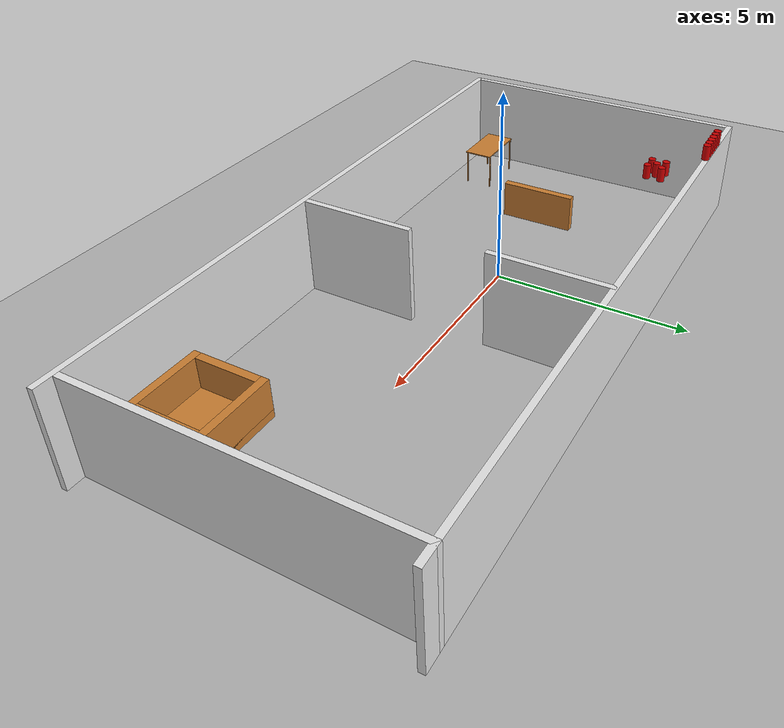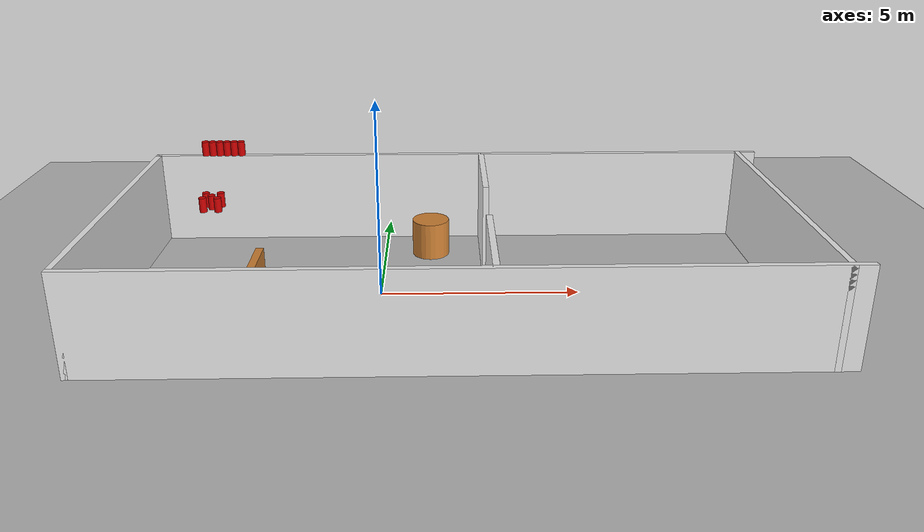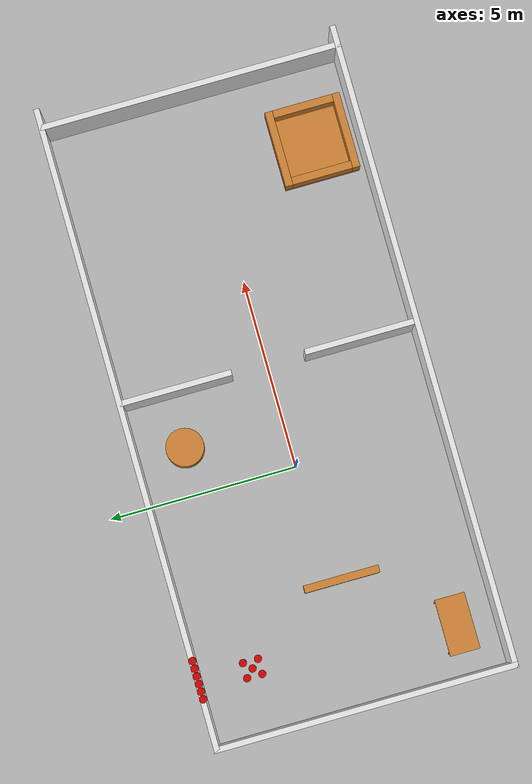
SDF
<?xml version="1.0" ?>
<sdf version='1.7'>
  <world name='trash_world'>

    <!-- ── Physics ─────────────────────────────────────────────────────── -->
    <physics name="1ms" type="ignored">
      <max_step_size>0.001</max_step_size>
      <real_time_factor>1.0</real_time_factor>
    </physics>

    <!-- ── Required plugins ─────────────────────────────────────────────── -->
    <plugin filename="ignition-gazebo-physics-system"
            name="gz::sim::systems::Physics"/>
    <plugin filename="ignition-gazebo-user-commands-system"
            name="gz::sim::systems::UserCommands"/>
    <plugin filename="ignition-gazebo-scene-broadcaster-system"
            name="gz::sim::systems::SceneBroadcaster"/>
    <plugin filename="ignition-gazebo-contact-system"
            name="gz::sim::systems::Contact"/>
    <!-- Sensors system required for gpu_lidar -->
    <plugin filename="ignition-gazebo-sensors-system"
            name="gz::sim::systems::Sensors">
      <render_engine>ogre2</render_engine>
    </plugin>

    <!-- ── Lighting ──────────────────────────────────────────────────────── -->
    <light type="directional" name="sun">
      <cast_shadows>true</cast_shadows>
      <pose>0 0 10 0 0 0</pose>
      <diffuse>0.8 0.8 0.8 1</diffuse>
      <specular>0.2 0.2 0.2 1</specular>
      <attenuation>
        <range>1000</range>
        <constant>0.9</constant>
        <linear>0.01</linear>
        <quadratic>0.001</quadratic>
      </attenuation>
      <direction>-0.5 0.1 -0.9</direction>
    </light>

    <!-- ── Ground plane ──────────────────────────────────────────────────── -->
    <model name="ground_plane">
      <static>true</static>
      <link name="link">
        <collision name="collision">
          <geometry>
            <plane><normal>0 0 1</normal><size>100 100</size></plane>
          </geometry>
        </collision>
        <visual name="visual">
          <geometry>
            <plane><normal>0 0 1</normal><size>100 100</size></plane>
          </geometry>
          <material>
            <ambient>0.7 0.7 0.7 1</ambient>
            <diffuse>0.7 0.7 0.7 1</diffuse>
          </material>
        </visual>
      </link>
    </model>

    <model name='office'>
      <pose>0 0 0 0 -0 0</pose>
      <link name='Wall_33'>
        <collision name='Wall_33_Collision'>
          <geometry>
            <box>
              <size>17 0.15 2.5</size>
            </box>
          </geometry>
          <pose>0 0 1.25 0 -0 0</pose>
          <max_contacts>10</max_contacts>
          <surface>
            <contact>
              <ode/>
            </contact>
            <bounce/>
            <friction>
              <torsional>
                <ode/>
              </torsional>
              <ode/>
            </friction>
          </surface>
        </collision>
        <visual name='Wall_33_Visual'>
          <pose>0 0 1.25 0 -0 0</pose>
          <geometry>
            <box>
              <size>17 0.15 2.5</size>
            </box>
          </geometry>
          <material><ambient>0.9 0.9 0.9 1</ambient><diffuse>0.9 0.9 0.9 1</diffuse></material>
          <meta>
            <layer>0</layer>
          </meta>
        </visual>
        <pose>2 -3.925 0 0 -0 0</pose>
        <self_collide>0</self_collide>
        <enable_wind>0</enable_wind>
        <kinematic>0</kinematic>
      </link>
      <link name='Wall_35'>
        <collision name='Wall_35_Collision'>
          <geometry>
            <box>
              <size>8 0.15 2.5</size>
            </box>
          </geometry>
          <pose>0 0 1.25 0 -0 0</pose>
          <max_contacts>10</max_contacts>
          <surface>
            <contact>
              <ode/>
            </contact>
            <bounce/>
            <friction>
              <torsional>
                <ode/>
              </torsional>
              <ode/>
            </friction>
          </surface>
        </collision>
        <visual name='Wall_35_Visual'>
          <pose>0 0 1.25 0 -0 0</pose>
          <geometry>
            <box>
              <size>8 0.15 2.5</size>
            </box>
          </geometry>
          <material><ambient>0.9 0.9 0.9 1</ambient><diffuse>0.9 0.9 0.9 1</diffuse></material>
          <meta>
            <layer>0</layer>
          </meta>
        </visual>
        <pose>10 0 0 0 -0 1.5708</pose>
        <self_collide>0</self_collide>
        <enable_wind>0</enable_wind>
        <kinematic>0</kinematic>
      </link>
      <link name='Wall_36'>
        <collision name='Wall_36_Collision'>
          <geometry>
            <box>
              <size>17 0.15 2.5</size>
            </box>
          </geometry>
          <pose>0 0 1.25 0 -0 0</pose>
          <max_contacts>10</max_contacts>
          <surface>
            <contact>
              <ode/>
            </contact>
            <bounce/>
            <friction>
              <torsional>
                <ode/>
              </torsional>
              <ode/>
            </friction>
          </surface>
        </collision>
        <visual name='Wall_36_Visual'>
          <pose>0 0 1.25 0 -0 0</pose>
          <geometry>
            <box>
              <size>17 0.15 2.5</size>
            </box>
          </geometry>
          <material><ambient>0.9 0.9 0.9 1</ambient><diffuse>0.9 0.9 0.9 1</diffuse></material>
          <meta>
            <layer>0</layer>
          </meta>
        </visual>
        <pose>2 3.925 0 0 -0 3.14159</pose>
        <self_collide>0</self_collide>
        <enable_wind>0</enable_wind>
        <kinematic>0</kinematic>
      </link>
      <link name='Wall_37'>
        <collision name='Wall_37_Collision'>
          <geometry>
            <box>
              <size>8 0.15 2.5</size>
            </box>
          </geometry>
          <pose>0 0 1.25 0 -0 0</pose>
          <max_contacts>10</max_contacts>
          <surface>
            <contact>
              <ode/>
            </contact>
            <bounce/>
            <friction>
              <torsional>
                <ode/>
              </torsional>
              <ode/>
            </friction>
          </surface>
        </collision>
        <visual name='Wall_37_Visual'>
          <pose>0 0 1.25 0 -0 0</pose>
          <geometry>
            <box>
              <size>8 0.15 2.5</size>
            </box>
          </geometry>
          <material><ambient>0.9 0.9 0.9 1</ambient><diffuse>0.9 0.9 0.9 1</diffuse></material>
          <meta>
            <layer>0</layer>
          </meta>
        </visual>
        <pose>-6.425 0 0 0 -0 -1.5708</pose>
        <self_collide>0</self_collide>
        <enable_wind>0</enable_wind>
        <kinematic>0</kinematic>
      </link>
      <link name='Wall_39'>
        <collision name='Wall_39_Collision'>
          <geometry>
            <box>
              <size>3 0.15 2.5</size>
            </box>
          </geometry>
          <pose>0 0 1.25 0 -0 0</pose>
          <max_contacts>10</max_contacts>
          <surface>
            <contact>
              <ode/>
            </contact>
            <bounce/>
            <friction>
              <torsional>
                <ode/>
              </torsional>
              <ode/>
            </friction>
          </surface>
        </collision>
        <visual name='Wall_39_Visual'>
          <pose>0 0 1.25 0 -0 0</pose>
          <geometry>
            <box>
              <size>3 0.15 2.5</size>
            </box>
          </geometry>
          <material><ambient>0.9 0.9 0.9 1</ambient><diffuse>0.9 0.9 0.9 1</diffuse></material>
          <meta>
            <layer>0</layer>
          </meta>
        </visual>
        <pose>2.6695 2.4638 0 0 -0 -1.5708</pose>
        <self_collide>0</self_collide>
        <enable_wind>0</enable_wind>
        <kinematic>0</kinematic>
      </link>
      <link name='Wall_41'>
        <collision name='Wall_41_Collision'>
          <geometry>
            <box>
              <size>3 0.15 2.5</size>
            </box>
          </geometry>
          <pose>0 0 1.25 0 -0 0</pose>
          <max_contacts>10</max_contacts>
          <surface>
            <contact>
              <ode/>
            </contact>
            <bounce/>
            <friction>
              <torsional>
                <ode/>
              </torsional>
              <ode/>
            </friction>
          </surface>
        </collision>
        <visual name='Wall_41_Visual'>
          <pose>0 0 1.25 0 -0 0</pose>
          <geometry>
            <box>
              <size>3 0.15 2.5</size>
            </box>
          </geometry>
          <material><ambient>0.9 0.9 0.9 1</ambient><diffuse>0.9 0.9 0.9 1</diffuse></material>
          <meta>
            <layer>0</layer>
          </meta>
        </visual>
        <pose>2.65657 -2.46875 0 0 -0 1.5708</pose>
        <self_collide>0</self_collide>
        <enable_wind>0</enable_wind>
        <kinematic>0</kinematic>
      </link>
      <static>1</static>
    </model>

    <!-- ══════════════════════════════════════════════════════════════════
         Goal Object
         ══════════════════════════════════════════════════════════════════ -->

    <model name='Box'>
      <static>true</static>
      <pose>8.0 -2.7 0.4 0 -0 0</pose>
      <link name='link_4'>
        <pose>0 0 -0.28 0 -0 0</pose>
        <gravity>1</gravity>
        <self_collide>1</self_collide>
        <kinematic>1</kinematic>
        <enable_wind>0</enable_wind>
        <visual name='visual'>
          <pose>0 0 0 0 -0 0</pose>
          <geometry>
            <box>
              <size>2 2 0.2</size>
            </box>
          </geometry>
          <material><ambient>0.8 0.5 0.2 1</ambient><diffuse>0.8 0.5 0.2 1</diffuse></material>
          <transparency>0</transparency>
          <cast_shadows>1</cast_shadows>
        </visual>
        <collision name='collision'>
          <laser_retro>0</laser_retro>
          <max_contacts>10</max_contacts>
          <pose>0 0 0 0 -0 0</pose>
          <geometry>
            <box>
              <size>2 2 0.2</size>
            </box>
          </geometry>
          <surface>
            <friction>
              <ode>
                <mu>1</mu>
                <mu2>1</mu2>
                <fdir1>0 0 0</fdir1>
                <slip1>0</slip1>
                <slip2>0</slip2>
              </ode>
              <torsional>
                <coefficient>1</coefficient>
                <patch_radius>0</patch_radius>
                <surface_radius>0</surface_radius>
                <use_patch_radius>1</use_patch_radius>
                <ode>
                  <slip>0</slip>
                </ode>
              </torsional>
            </friction>
            <bounce>
              <restitution_coefficient>0</restitution_coefficient>
              <threshold>1e+06</threshold>
            </bounce>
            <contact>
              <collide_without_contact>0</collide_without_contact>
              <collide_without_contact_bitmask>1</collide_without_contact_bitmask>
              <collide_bitmask>1</collide_bitmask>
              <ode>
                <soft_cfm>0</soft_cfm>
                <soft_erp>0.2</soft_erp>
                <kp>1e+13</kp>
                <kd>1</kd>
                <max_vel>0.01</max_vel>
                <min_depth>0</min_depth>
              </ode>
              <bullet>
                <split_impulse>1</split_impulse>
                <split_impulse_penetration_threshold>-0.01</split_impulse_penetration_threshold>
                <soft_cfm>0</soft_cfm>
                <soft_erp>0.2</soft_erp>
                <kp>1e+13</kp>
                <kd>1</kd>
              </bullet>
            </contact>
          </surface>
        </collision>
      </link>
      <link name='link_6'>
        <pose>0 -0.9 0.12 0 -0 0</pose>
        <gravity>1</gravity>
        <self_collide>1</self_collide>
        <kinematic>1</kinematic>
        <enable_wind>0</enable_wind>
        <visual name='visual'>
          <pose>0 0 0 0 -0 0</pose>
          <geometry>
            <box>
              <size>2 0.2 1</size>
            </box>
          </geometry>
          <material><ambient>0.8 0.5 0.2 1</ambient><diffuse>0.8 0.5 0.2 1</diffuse></material>
          <transparency>0</transparency>
          <cast_shadows>1</cast_shadows>
        </visual>
        <collision name='collision'>
          <laser_retro>0</laser_retro>
          <max_contacts>10</max_contacts>
          <pose>0 0 0 0 -0 0</pose>
          <geometry>
            <box>
              <size>2 0.2 1</size>
            </box>
          </geometry>
          <surface>
            <friction>
              <ode>
                <mu>1</mu>
                <mu2>1</mu2>
                <fdir1>0 0 0</fdir1>
                <slip1>0</slip1>
                <slip2>0</slip2>
              </ode>
              <torsional>
                <coefficient>1</coefficient>
                <patch_radius>0</patch_radius>
                <surface_radius>0</surface_radius>
                <use_patch_radius>1</use_patch_radius>
                <ode>
                  <slip>0</slip>
                </ode>
              </torsional>
            </friction>
            <bounce>
              <restitution_coefficient>0</restitution_coefficient>
              <threshold>1e+06</threshold>
            </bounce>
            <contact>
              <collide_without_contact>0</collide_without_contact>
              <collide_without_contact_bitmask>1</collide_without_contact_bitmask>
              <collide_bitmask>1</collide_bitmask>
              <ode>
                <soft_cfm>0</soft_cfm>
                <soft_erp>0.2</soft_erp>
                <kp>1e+13</kp>
                <kd>1</kd>
                <max_vel>0.01</max_vel>
                <min_depth>0</min_depth>
              </ode>
              <bullet>
                <split_impulse>1</split_impulse>
                <split_impulse_penetration_threshold>-0.01</split_impulse_penetration_threshold>
                <soft_cfm>0</soft_cfm>
                <soft_erp>0.2</soft_erp>
                <kp>1e+13</kp>
                <kd>1</kd>
              </bullet>
            </contact>
          </surface>
        </collision>
      </link>
      <link name='link_7'>
        <pose>0 0.9 0.12 0 -0 0</pose>
        <gravity>1</gravity>
        <self_collide>1</self_collide>
        <kinematic>1</kinematic>
        <enable_wind>0</enable_wind>
        <visual name='visual'>
          <pose>0 0 0 0 -0 0</pose>
          <geometry>
            <box>
              <size>2 0.2 1</size>
            </box>
          </geometry>
          <material><ambient>0.8 0.5 0.2 1</ambient><diffuse>0.8 0.5 0.2 1</diffuse></material>
          <transparency>0</transparency>
          <cast_shadows>1</cast_shadows>
        </visual>
        <collision name='collision'>
          <laser_retro>0</laser_retro>
          <max_contacts>10</max_contacts>
          <pose>0 0 0 0 -0 0</pose>
          <geometry>
            <box>
              <size>2 0.2 1</size>
            </box>
          </geometry>
          <surface>
            <friction>
              <ode>
                <mu>1</mu>
                <mu2>1</mu2>
                <fdir1>0 0 0</fdir1>
                <slip1>0</slip1>
                <slip2>0</slip2>
              </ode>
              <torsional>
                <coefficient>1</coefficient>
                <patch_radius>0</patch_radius>
                <surface_radius>0</surface_radius>
                <use_patch_radius>1</use_patch_radius>
                <ode>
                  <slip>0</slip>
                </ode>
              </torsional>
            </friction>
            <bounce>
              <restitution_coefficient>0</restitution_coefficient>
              <threshold>1e+06</threshold>
            </bounce>
            <contact>
              <collide_without_contact>0</collide_without_contact>
              <collide_without_contact_bitmask>1</collide_without_contact_bitmask>
              <collide_bitmask>1</collide_bitmask>
              <ode>
                <soft_cfm>0</soft_cfm>
                <soft_erp>0.2</soft_erp>
                <kp>1e+13</kp>
                <kd>1</kd>
                <max_vel>0.01</max_vel>
                <min_depth>0</min_depth>
              </ode>
              <bullet>
                <split_impulse>1</split_impulse>
                <split_impulse_penetration_threshold>-0.01</split_impulse_penetration_threshold>
                <soft_cfm>0</soft_cfm>
                <soft_erp>0.2</soft_erp>
                <kp>1e+13</kp>
                <kd>1</kd>
              </bullet>
            </contact>
          </surface>
        </collision>
      </link>
      <link name='link_8'>
        <pose>-0.9 0 0.12 0 -0 0</pose>
        <gravity>1</gravity>
        <self_collide>1</self_collide>
        <kinematic>1</kinematic>
        <enable_wind>0</enable_wind>
        <visual name='visual'>
          <pose>0 0 0 0 -0 0</pose>
          <geometry>
            <box>
              <size>0.2 1.6 1</size>
            </box>
          </geometry>
          <material><ambient>0.8 0.5 0.2 1</ambient><diffuse>0.8 0.5 0.2 1</diffuse></material>
          <transparency>0</transparency>
          <cast_shadows>1</cast_shadows>
        </visual>
        <collision name='collision'>
          <laser_retro>0</laser_retro>
          <max_contacts>10</max_contacts>
          <pose>0 0 0 0 -0 0</pose>
          <geometry>
            <box>
              <size>0.2 1.6 1</size>
            </box>
          </geometry>
          <surface>
            <friction>
              <ode>
                <mu>1</mu>
                <mu2>1</mu2>
                <fdir1>0 0 0</fdir1>
                <slip1>0</slip1>
                <slip2>0</slip2>
              </ode>
              <torsional>
                <coefficient>1</coefficient>
                <patch_radius>0</patch_radius>
                <surface_radius>0</surface_radius>
                <use_patch_radius>1</use_patch_radius>
                <ode>
                  <slip>0</slip>
                </ode>
              </torsional>
            </friction>
            <bounce>
              <restitution_coefficient>0</restitution_coefficient>
              <threshold>1e+06</threshold>
            </bounce>
            <contact>
              <collide_without_contact>0</collide_without_contact>
              <collide_without_contact_bitmask>1</collide_without_contact_bitmask>
              <collide_bitmask>1</collide_bitmask>
              <ode>
                <soft_cfm>0</soft_cfm>
                <soft_erp>0.2</soft_erp>
                <kp>1e+13</kp>
                <kd>1</kd>
                <max_vel>0.01</max_vel>
                <min_depth>0</min_depth>
              </ode>
              <bullet>
                <split_impulse>1</split_impulse>
                <split_impulse_penetration_threshold>-0.01</split_impulse_penetration_threshold>
                <soft_cfm>0</soft_cfm>
                <soft_erp>0.2</soft_erp>
                <kp>1e+13</kp>
                <kd>1</kd>
              </bullet>
            </contact>
          </surface>
        </collision>
      </link>
      <link name='link_8_clone'>
        <pose>0.9 0 0.12 0 -0 0</pose>
        <gravity>1</gravity>
        <self_collide>1</self_collide>
        <kinematic>1</kinematic>
        <enable_wind>0</enable_wind>
        <visual name='visual'>
          <pose>0 0 0 0 -0 0</pose>
          <geometry>
            <box>
              <size>0.2 1.6 1</size>
            </box>
          </geometry>
          <material><ambient>0.8 0.5 0.2 1</ambient><diffuse>0.8 0.5 0.2 1</diffuse></material>
          <transparency>0</transparency>
          <cast_shadows>1</cast_shadows>
        </visual>
        <collision name='collision'>
          <laser_retro>0</laser_retro>
          <max_contacts>10</max_contacts>
          <pose>0 0 0 0 -0 0</pose>
          <geometry>
            <box>
              <size>0.2 1.6 1</size>
            </box>
          </geometry>
          <surface>
            <friction>
              <ode>
                <mu>1</mu>
                <mu2>1</mu2>
                <fdir1>0 0 0</fdir1>
                <slip1>0</slip1>
                <slip2>0</slip2>
              </ode>
              <torsional>
                <coefficient>1</coefficient>
                <patch_radius>0</patch_radius>
                <surface_radius>0</surface_radius>
                <use_patch_radius>1</use_patch_radius>
                <ode>
                  <slip>0</slip>
                </ode>
              </torsional>
            </friction>
            <bounce>
              <restitution_coefficient>0</restitution_coefficient>
              <threshold>1e+06</threshold>
            </bounce>
            <contact>
              <collide_without_contact>0</collide_without_contact>
              <collide_without_contact_bitmask>1</collide_without_contact_bitmask>
              <collide_bitmask>1</collide_bitmask>
              <ode>
                <soft_cfm>0</soft_cfm>
                <soft_erp>0.2</soft_erp>
                <kp>1e+13</kp>
                <kd>1</kd>
                <max_vel>0.01</max_vel>
                <min_depth>0</min_depth>
              </ode>
              <bullet>
                <split_impulse>1</split_impulse>
                <split_impulse_penetration_threshold>-0.01</split_impulse_penetration_threshold>
                <soft_cfm>0</soft_cfm>
                <soft_erp>0.2</soft_erp>
                <kp>1e+13</kp>
                <kd>1</kd>
              </bullet>
            </contact>
          </surface>
        </collision>
      </link>
      <static>0</static>
      <allow_auto_disable>1</allow_auto_disable>
      <pose>0 0 0 0 -0 0</pose>
    </model>

    <model name='table'>
      <static>1</static>
      <link name='link'>
        <collision name='surface'>
          <pose>0 0 1 0 -0 0</pose>
          <geometry>
            <box>
              <size>1.5 0.8 0.03</size>
            </box>
          </geometry>
          <surface>
            <friction>
              <ode>
                <mu>0.6</mu>
                <mu2>0.6</mu2>
              </ode>
              <torsional>
                <ode/>
              </torsional>
            </friction>
            <contact>
              <ode/>
            </contact>
            <bounce/>
          </surface>
          <max_contacts>10</max_contacts>
        </collision>
        <visual name='visual1'>
          <pose>0 0 1 0 -0 0</pose>
          <geometry>
            <box>
              <size>1.5 0.8 0.03</size>
            </box>
          </geometry>
          <material><ambient>0.8 0.5 0.2 1</ambient><diffuse>0.8 0.5 0.2 1</diffuse></material>
        </visual>
        <collision name='front_left_leg'>
          <pose>0.68 0.38 0.5 0 -0 0</pose>
          <geometry>
            <cylinder>
              <radius>0.02</radius>
              <length>1</length>
            </cylinder>
          </geometry>
          <max_contacts>10</max_contacts>
          <surface>
            <contact>
              <ode/>
            </contact>
            <bounce/>
            <friction>
              <torsional>
                <ode/>
              </torsional>
              <ode/>
            </friction>
          </surface>
        </collision>
        <visual name='front_left_leg'>
          <pose>0.68 0.38 0.5 0 -0 0</pose>
          <geometry>
            <cylinder>
              <radius>0.02</radius>
              <length>1</length>
            </cylinder>
          </geometry>
          <material><ambient>0.8 0.5 0.2 1</ambient><diffuse>0.8 0.5 0.2 1</diffuse></material>
        </visual>
        <collision name='front_right_leg'>
          <pose>0.68 -0.38 0.5 0 -0 0</pose>
          <geometry>
            <cylinder>
              <radius>0.02</radius>
              <length>1</length>
            </cylinder>
          </geometry>
          <max_contacts>10</max_contacts>
          <surface>
            <contact>
              <ode/>
            </contact>
            <bounce/>
            <friction>
              <torsional>
                <ode/>
              </torsional>
              <ode/>
            </friction>
          </surface>
        </collision>
        <visual name='front_right_leg'>
          <pose>0.68 -0.38 0.5 0 -0 0</pose>
          <geometry>
            <cylinder>
              <radius>0.02</radius>
              <length>1</length>
            </cylinder>
          </geometry>
          <material><ambient>0.8 0.5 0.2 1</ambient><diffuse>0.8 0.5 0.2 1</diffuse></material>
        </visual>
        <collision name='back_right_leg'>
          <pose>-0.68 -0.38 0.5 0 -0 0</pose>
          <geometry>
            <cylinder>
              <radius>0.02</radius>
              <length>1</length>
            </cylinder>
          </geometry>
          <max_contacts>10</max_contacts>
          <surface>
            <contact>
              <ode/>
            </contact>
            <bounce/>
            <friction>
              <torsional>
                <ode/>
              </torsional>
              <ode/>
            </friction>
          </surface>
        </collision>
        <visual name='back_right_leg'>
          <pose>-0.68 -0.38 0.5 0 -0 0</pose>
          <geometry>
            <cylinder>
              <radius>0.02</radius>
              <length>1</length>
            </cylinder>
          </geometry>
          <material><ambient>0.8 0.5 0.2 1</ambient><diffuse>0.8 0.5 0.2 1</diffuse></material>
        </visual>
        <collision name='back_left_leg'>
          <pose>-0.68 0.38 0.5 0 -0 0</pose>
          <geometry>
            <cylinder>
              <radius>0.02</radius>
              <length>1</length>
            </cylinder>
          </geometry>
          <max_contacts>10</max_contacts>
          <surface>
            <contact>
              <ode/>
            </contact>
            <bounce/>
            <friction>
              <torsional>
                <ode/>
              </torsional>
              <ode/>
            </friction>
          </surface>
        </collision>
        <visual name='back_left_leg'>
          <pose>-0.68 0.38 0.5 0 -0 0</pose>
          <geometry>
            <cylinder>
              <radius>0.02</radius>
              <length>1</length>
            </cylinder>
          </geometry>
          <material><ambient>0.8 0.5 0.2 1</ambient><diffuse>0.8 0.5 0.2 1</diffuse></material>
        </visual>
        <self_collide>0</self_collide>
        <enable_wind>0</enable_wind>
        <kinematic>0</kinematic>
      </link>
      <pose>-5.04519 -2.8557 0 0 -0 0</pose>
    </model>

    <model name='unit_cylinder'>
      <pose>1.23455 2.63413 0.5 0 -0 0</pose>
      <link name='link'>
        <collision name='collision'>
          <geometry>
            <cylinder>
              <radius>0.5</radius>
              <length>1</length>
            </cylinder>
          </geometry>
          <max_contacts>10</max_contacts>
          <surface>
            <contact>
              <ode/>
            </contact>
            <bounce/>
            <friction>
              <torsional>
                <ode/>
              </torsional>
              <ode/>
            </friction>
          </surface>
        </collision>
        <visual name='visual'>
          <geometry>
            <cylinder>
              <radius>0.5</radius>
              <length>1</length>
            </cylinder>
          </geometry>
          <material><ambient>0.8 0.5 0.2 1</ambient><diffuse>0.8 0.5 0.2 1</diffuse></material>
        </visual>
        <self_collide>0</self_collide>
        <enable_wind>0</enable_wind>
        <kinematic>0</kinematic>
      </link>
    </model>

    <model name='unit_box'>
      <pose>-3.12033 -0.319184 0.5 0 -0 0</pose>
      <link name='link'>
        <collision name='collision'>
          <geometry>
            <box>
              <size>0.2 2 1</size>
            </box>
          </geometry>
          <max_contacts>10</max_contacts>
          <surface>
            <contact>
              <ode/>
            </contact>
            <bounce/>
            <friction>
              <torsional>
                <ode/>
              </torsional>
              <ode/>
            </friction>
          </surface>
        </collision>
        <visual name='visual'>
          <geometry>
            <box>
              <size>0.2 2 1</size>
            </box>
          </geometry>
          <material><ambient>0.8 0.5 0.2 1</ambient><diffuse>0.8 0.5 0.2 1</diffuse></material>
        </visual>
        <self_collide>0</self_collide>
        <enable_wind>0</enable_wind>
        <kinematic>0</kinematic>
      </link>
    </model>

    <model name='coke_can'>
      <pose>-4.7 3.9 2.7 0 0 0</pose>
      <link name='link'>
        <collision name='collision'>
          <geometry>
            <cylinder>
              <radius>0.1</radius>
              <length>0.4</length>
            </cylinder>
          </geometry>
          <max_contacts>10</max_contacts>
          <surface>
            <contact>
              <ode/>
            </contact>
            <bounce/>
            <friction>
              <torsional>
                <ode/>
              </torsional>
              <ode/>
            </friction>
          </surface>
        </collision>
        <visual name='visual'>
          <geometry>
            <cylinder>
              <radius>0.1</radius>
              <length>0.4</length>
            </cylinder>
          </geometry>
          <material><ambient>0.8 0 0 1</ambient><diffuse>0.8 0 0 1</diffuse></material>
        </visual>
        <self_collide>0</self_collide>
        <enable_wind>0</enable_wind>
        <kinematic>0</kinematic>
      </link>
    </model>

    <model name='coke_can2'>
      <pose>-4.5 3.9 2.7 0 0 0</pose>
      <link name='link'>
        <collision name='collision'>
          <geometry>
            <cylinder>
              <radius>0.1</radius>
              <length>0.4</length>
            </cylinder>
          </geometry>
          <max_contacts>10</max_contacts>
          <surface>
            <contact>
              <ode/>
            </contact>
            <bounce/>
            <friction>
              <torsional>
                <ode/>
              </torsional>
              <ode/>
            </friction>
          </surface>
        </collision>
        <visual name='visual'>
          <geometry>
            <cylinder>
              <radius>0.1</radius>
              <length>0.4</length>
            </cylinder>
          </geometry>
          <material><ambient>0.8 0 0 1</ambient><diffuse>0.8 0 0 1</diffuse></material>
        </visual>
        <self_collide>0</self_collide>
        <enable_wind>0</enable_wind>
        <kinematic>0</kinematic>
      </link>
    </model>

    <model name='coke_can4'>
      <pose>-4.3 3.9 2.7 0 0 0</pose>
      <link name='link'>
        <collision name='collision'>
          <geometry>
            <cylinder>
              <radius>0.1</radius>
              <length>0.4</length>
            </cylinder>
          </geometry>
          <max_contacts>10</max_contacts>
          <surface>
            <contact>
              <ode/>
            </contact>
            <bounce/>
            <friction>
              <torsional>
                <ode/>
              </torsional>
              <ode/>
            </friction>
          </surface>
        </collision>
        <visual name='visual'>
          <geometry>
            <cylinder>
              <radius>0.1</radius>
              <length>0.4</length>
            </cylinder>
          </geometry>
          <material><ambient>0.8 0 0 1</ambient><diffuse>0.8 0 0 1</diffuse></material>
        </visual>
        <self_collide>0</self_collide>
        <enable_wind>0</enable_wind>
        <kinematic>0</kinematic>
      </link>
    </model>

    <model name='coke_can6'>
      <pose>-4.1 3.9 2.7 0 0 0</pose>
      <link name='link'>
        <collision name='collision'>
          <geometry>
            <cylinder>
              <radius>0.1</radius>
              <length>0.4</length>
            </cylinder>
          </geometry>
          <max_contacts>10</max_contacts>
          <surface>
            <contact>
              <ode/>
            </contact>
            <bounce/>
            <friction>
              <torsional>
                <ode/>
              </torsional>
              <ode/>
            </friction>
          </surface>
        </collision>
        <visual name='visual'>
          <geometry>
            <cylinder>
              <radius>0.1</radius>
              <length>0.4</length>
            </cylinder>
          </geometry>
          <material><ambient>0.8 0 0 1</ambient><diffuse>0.8 0 0 1</diffuse></material>
        </visual>
        <self_collide>0</self_collide>
        <enable_wind>0</enable_wind>
        <kinematic>0</kinematic>
      </link>
    </model>

    <model name='coke_can8'>
      <pose>-4.9 3.9 2.7 0 0 0</pose>
      <link name='link'>
        <collision name='collision'>
          <geometry>
            <cylinder>
              <radius>0.1</radius>
              <length>0.4</length>
            </cylinder>
          </geometry>
          <max_contacts>10</max_contacts>
          <surface>
            <contact>
              <ode/>
            </contact>
            <bounce/>
            <friction>
              <torsional>
                <ode/>
              </torsional>
              <ode/>
            </friction>
          </surface>
        </collision>
        <visual name='visual'>
          <geometry>
            <cylinder>
              <radius>0.1</radius>
              <length>0.4</length>
            </cylinder>
          </geometry>
          <material><ambient>0.8 0 0 1</ambient><diffuse>0.8 0 0 1</diffuse></material>
        </visual>
        <self_collide>0</self_collide>
        <enable_wind>0</enable_wind>
        <kinematic>0</kinematic>
      </link>
    </model>

    <model name='coke_can10'>
      <pose>-5.1 3.9 2.7 0 0 0</pose>
      <link name='link'>
        <collision name='collision'>
          <geometry>
            <cylinder>
              <radius>0.1</radius>
              <length>0.4</length>
            </cylinder>
          </geometry>
          <max_contacts>10</max_contacts>
          <surface>
            <contact>
              <ode/>
            </contact>
            <bounce/>
            <friction>
              <torsional>
                <ode/>
              </torsional>
              <ode/>
            </friction>
          </surface>
        </collision>
        <visual name='visual'>
          <geometry>
            <cylinder>
              <radius>0.1</radius>
              <length>0.4</length>
            </cylinder>
          </geometry>
          <material><ambient>0.8 0 0 1</ambient><diffuse>0.8 0 0 1</diffuse></material>
        </visual>
        <self_collide>0</self_collide>
        <enable_wind>0</enable_wind>
        <kinematic>0</kinematic>
      </link>
    </model>

    <model name='coke_can11'>
      <pose>-4.7 2.5 1.6 0 0 0</pose>
      <link name='link'>
        <collision name='collision'>
          <geometry>
            <cylinder>
              <radius>0.1</radius>
              <length>0.4</length>
            </cylinder>
          </geometry>
          <max_contacts>10</max_contacts>
          <surface>
            <contact>
              <ode/>
            </contact>
            <bounce/>
            <friction>
              <torsional>
                <ode/>
              </torsional>
              <ode/>
            </friction>
          </surface>
        </collision>
        <visual name='visual'>
          <geometry>
            <cylinder>
              <radius>0.1</radius>
              <length>0.4</length>
            </cylinder>
          </geometry>
          <material><ambient>0.8 0 0 1</ambient><diffuse>0.8 0 0 1</diffuse></material>
        </visual>
        <self_collide>0</self_collide>
        <enable_wind>0</enable_wind>
        <kinematic>0</kinematic>
      </link>
    </model>

    <model name='coke_can16'>
      <pose>-4.5 2.3 1.6 0 0 0</pose>
      <link name='link'>
        <collision name='collision'>
          <geometry>
            <cylinder>
              <radius>0.1</radius>
              <length>0.4</length>
            </cylinder>
          </geometry>
          <max_contacts>10</max_contacts>
          <surface>
            <contact>
              <ode/>
            </contact>
            <bounce/>
            <friction>
              <torsional>
                <ode/>
              </torsional>
              <ode/>
            </friction>
          </surface>
        </collision>
        <visual name='visual'>
          <geometry>
            <cylinder>
              <radius>0.1</radius>
              <length>0.4</length>
            </cylinder>
          </geometry>
          <material><ambient>0.8 0 0 1</ambient><diffuse>0.8 0 0 1</diffuse></material>
        </visual>
        <self_collide>0</self_collide>
        <enable_wind>0</enable_wind>
        <kinematic>0</kinematic>
      </link>
    </model>

    <model name='coke_can17'>
      <pose>-4.5 2.7 1.6 0 0 0</pose>
      <link name='link'>
        <collision name='collision'>
          <geometry>
            <cylinder>
              <radius>0.1</radius>
              <length>0.4</length>
            </cylinder>
          </geometry>
          <max_contacts>10</max_contacts>
          <surface>
            <contact>
              <ode/>
            </contact>
            <bounce/>
            <friction>
              <torsional>
                <ode/>
              </torsional>
              <ode/>
            </friction>
          </surface>
        </collision>
        <visual name='visual'>
          <geometry>
            <cylinder>
              <radius>0.1</radius>
              <length>0.4</length>
            </cylinder>
          </geometry>
          <material><ambient>0.8 0 0 1</ambient><diffuse>0.8 0 0 1</diffuse></material>
        </visual>
        <self_collide>0</self_collide>
        <enable_wind>0</enable_wind>
        <kinematic>0</kinematic>
      </link>
    </model>

    <model name='coke_can18'>
      <pose>-4.9 2.3 1.6 0 0 0</pose>
      <link name='link'>
        <collision name='collision'>
          <geometry>
            <cylinder>
              <radius>0.1</radius>
              <length>0.4</length>
            </cylinder>
          </geometry>
          <max_contacts>10</max_contacts>
          <surface>
            <contact>
              <ode/>
            </contact>
            <bounce/>
            <friction>
              <torsional>
                <ode/>
              </torsional>
              <ode/>
            </friction>
          </surface>
        </collision>
        <visual name='visual'>
          <geometry>
            <cylinder>
              <radius>0.1</radius>
              <length>0.4</length>
            </cylinder>
          </geometry>
          <material><ambient>0.8 0 0 1</ambient><diffuse>0.8 0 0 1</diffuse></material>
        </visual>
        <self_collide>0</self_collide>
        <enable_wind>0</enable_wind>
        <kinematic>0</kinematic>
      </link>
    </model>

    <model name='coke_can19'>
      <pose>-4.9 2.7 1.6 0 0 0</pose>
      <link name='link'>
        <collision name='collision'>
          <geometry>
            <cylinder>
              <radius>0.1</radius>
              <length>0.4</length>
            </cylinder>
          </geometry>
          <max_contacts>10</max_contacts>
          <surface>
            <contact>
              <ode/>
            </contact>
            <bounce/>
            <friction>
              <torsional>
                <ode/>
              </torsional>
              <ode/>
            </friction>
          </surface>
        </collision>
        <visual name='visual'>
          <geometry>
            <cylinder>
              <radius>0.1</radius>
              <length>0.4</length>
            </cylinder>
          </geometry>
          <material><ambient>0.8 0 0 1</ambient><diffuse>0.8 0 0 1</diffuse></material>
        </visual>
        <self_collide>0</self_collide>
        <enable_wind>0</enable_wind>
        <kinematic>0</kinematic>
      </link>
    </model>

  </world>
</sdf>
